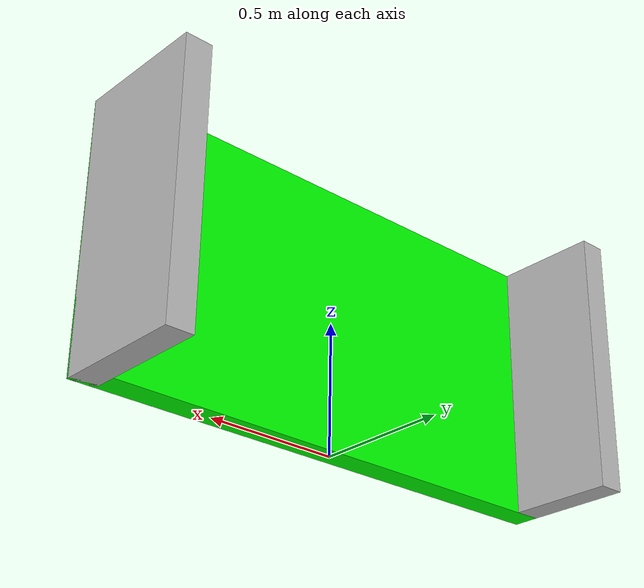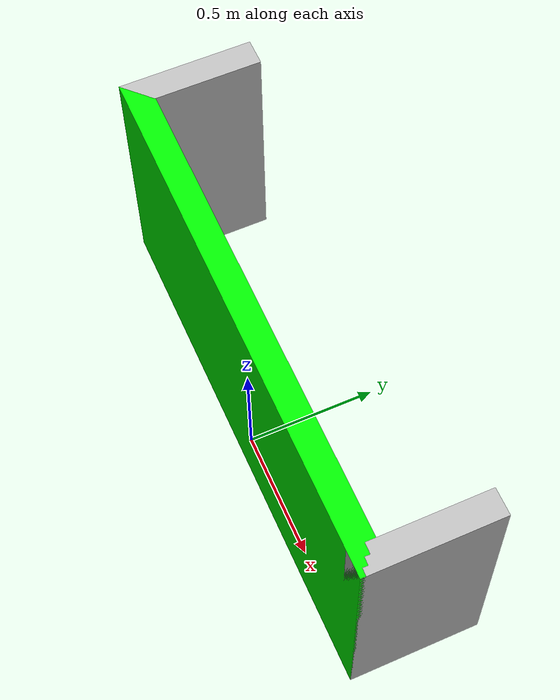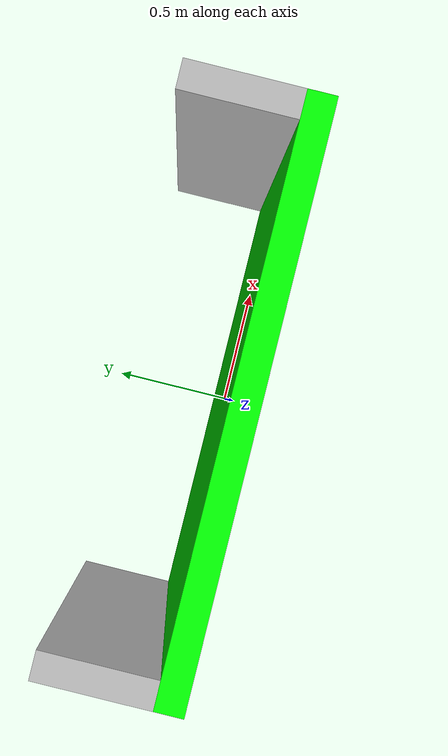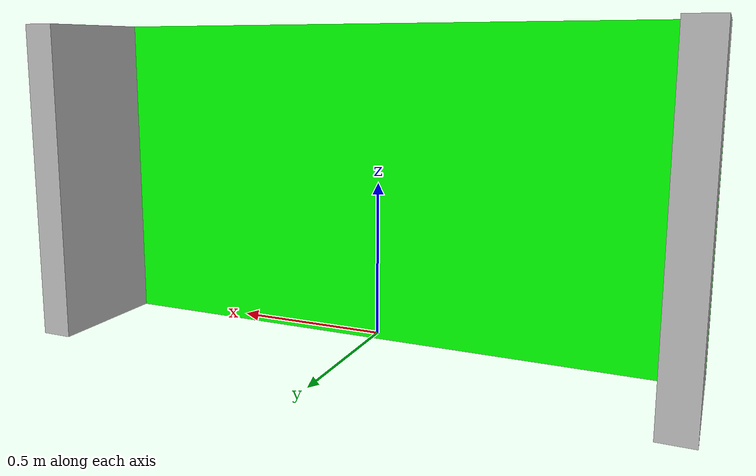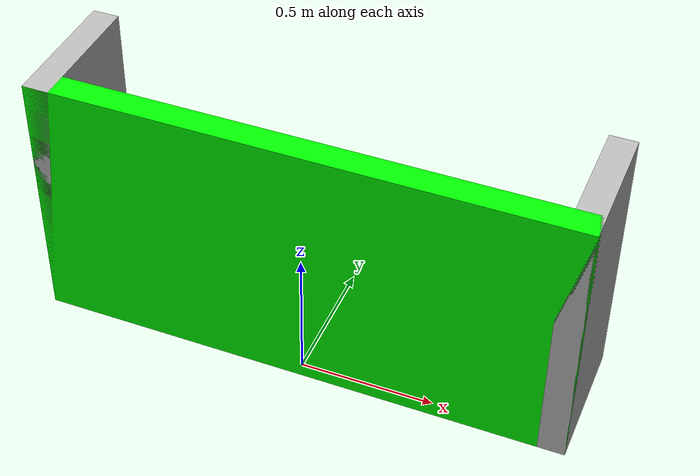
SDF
<?xml version="1.0" ?>
<sdf version="1.6">
  <model name="goal">
    <pose>0 0 0 0 0 0</pose> <!-- ปรับ pose ให้ติดพื้น (z=0) -->

    <!-- แผ่นกลาง (ผนังหลัง) ตั้งฉากกับพื้น สีเขียว -->
    <link name="back_wall">
      <pose>0 0 0.5 0 0 0</pose>
      <inertial>
        <mass>1.0</mass>
        <inertia>
          <ixx>0.01</ixx> <ixy>0</ixy> <ixz>0</ixz>
          <iyy>0.01</iyy> <iyz>0</iyz>
          <izz>0.01</izz>
        </inertia>
      </inertial>
      <collision name="collision_back_wall">
        <geometry>
          <box>
            <size>2.0 0.1 1.0</size>
          </box>
        </geometry>
        <surface>
          <friction>
            <ode>
              <mu>1.0</mu>
              <mu2>1.0</mu2>
            </ode>
          </friction>
          <contact>
            <ode/>
          </contact>
        </surface>
      </collision>
      <visual name="visual_back_wall">
        <geometry>
          <box>
            <size>2.0 0.1 1.0</size>
          </box>
        </geometry>
        <material>
          <ambient>0 1 0 1</ambient>
          <diffuse>0 1 0 1</diffuse>
          <specular>0 1 0 1</specular>
        </material>
      </visual>
    </link>

    <!-- ผนังซ้าย (ต่อจากขอบซ้ายของแผ่นกลาง) -->
    <link name="wall_left">
      <pose>-0.95 0.2 0.5 0 0 0</pose> <!-- ปรับ y จาก 0.45 เป็น 0.2 -->
      <inertial>
        <mass>0.5</mass>
        <inertia>
          <ixx>0.01</ixx> <ixy>0</ixy> <ixz>0</ixz>
          <iyy>0.01</iyy> <iyz>0</iyz>
          <izz>0.01</izz>
        </inertia>
      </inertial>
      <collision name="collision_wall_left">
        <geometry>
          <box>
            <size>0.1 0.5 1.0</size> <!-- ลดความลึกจาก 1.0 เป็น 0.5 -->
          </box>
        </geometry>
        <surface>
          <friction>
            <ode>
              <mu>1.0</mu>
              <mu2>1.0</mu2>
            </ode>
          </friction>
          <contact>
            <ode/>
          </contact>
        </surface>
      </collision>
      <visual name="visual_wall_left">
        <geometry>
          <box>
            <size>0.1 0.5 1.0</size> <!-- ลดความลึกจาก 1.0 เป็น 0.5 -->
          </box>
        </geometry>
      </visual>
    </link>

    <!-- ผนังขวา (ต่อจากขอบขวาของแผ่นกลาง) -->
    <link name="wall_right">
      <pose>0.95 0.2 0.5 0 0 0</pose> <!-- ปรับ y จาก 0.45 เป็น 0.2 -->
      <inertial>
        <mass>0.5</mass>
        <inertia>
          <ixx>0.01</ixx> <ixy>0</ixy> <ixz>0</ixz>
          <iyy>0.01</iyy> <iyz>0</iyz>
          <izz>0.01</izz>
        </inertia>
      </inertial>
      <collision name="collision_wall_right">
        <geometry>
          <box>
            <size>0.1 0.5 1.0</size> <!-- ลดความลึกจาก 1.0 เป็น 0.5 -->
          </box>
        </geometry>
        <surface>
          <friction>
            <ode>
              <mu>1.0</mu>
              <mu2>1.0</mu2>
            </ode>
          </friction>
          <contact>
            <ode/>
          </contact>
        </surface>
      </collision>
      <visual name="visual_wall_right">
        <geometry>
          <box>
            <size>0.1 0.5 1.0</size> <!-- ลดความลึกจาก 1.0 เป็น 0.5 -->
          </box>
        </geometry>
      </visual>
    </link>

    <!-- การเชื่อมโยง link เพื่อยึดให้แน่น -->
    <joint name="back_to_wall_left" type="fixed">
      <parent>back_wall</parent>
      <child>wall_left</child>
      <pose>0 0 0 0 0 0</pose>
    </joint>
    <joint name="back_to_wall_right" type="fixed">
      <parent>back_wall</parent>
      <child>wall_right</child>
      <pose>0 0 0 0 0 0</pose>
    </joint>

    <!-- ทำให้โมเดลติดพื้นและไม่เคลื่อนไหว -->
    <static>true</static>
  </model>
</sdf>
